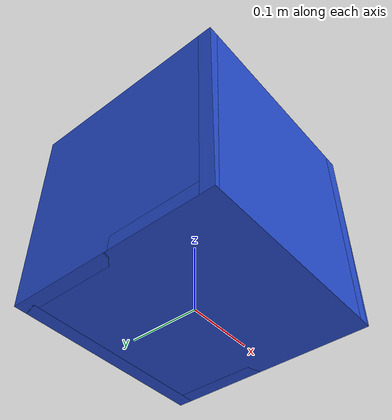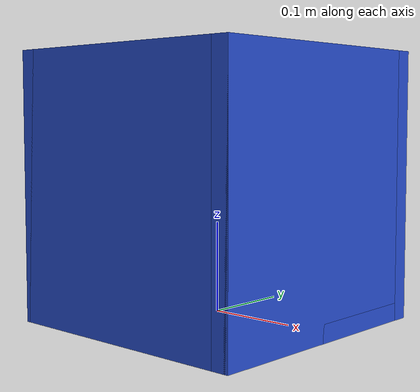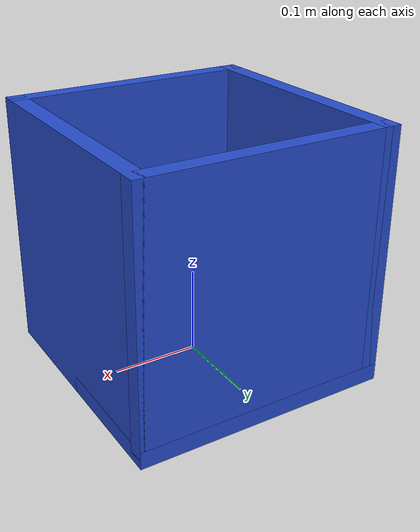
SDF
<?xml version='1.0'?>
<sdf version='1.6'>
  <model name='bin2_blue'>
    <link name='link_0'>
      <pose frame=''>-0 -0.140001 0.14 0 -0 0</pose>
      <inertial>
        <mass>0.6714</mass>
        <inertia>
          <ixx>0.00505788</ixx>
          <ixy>0</ixy>
          <ixz>0</ixz>
          <iyy>0.010071</iyy>
          <iyz>0</iyz>
          <izz>0.00505788</izz>
        </inertia>
        <pose frame=''>0 0 0 0 -0 0</pose>
      </inertial>
      <gravity>1</gravity>
      <self_collide>0</self_collide>
      <kinematic>0</kinematic>
      <enable_wind>0</enable_wind>
      <visual name='visual'>
        <pose frame=''>0 0 0 0 -0 0</pose>
        <geometry>
          <box>
            <size>0.3 0.02 0.3</size>
          </box>
        </geometry>
        <material>
          <lighting>1</lighting>
          <script>
            <uri>file://media/materials/scripts/gazebo.material</uri>
            <name>Gazebo/Blue</name>
          </script>
          <ambient>0 0 1 1</ambient>
          <diffuse>0 0 1 1</diffuse>
          <specular>0.01 0.01 1 1</specular>
          <emissive>0 0 0 1</emissive>
          <shader type='vertex'>
            <normal_map>__default__</normal_map>
          </shader>
        </material>
        <cast_shadows>1</cast_shadows>
        <transparency>0</transparency>
      </visual>
      <collision name='collision'>
        <laser_retro>0</laser_retro>
        <max_contacts>10</max_contacts>
        <pose frame=''>0 0 0 0 -0 0</pose>
        <geometry>
          <box>
            <size>0.3 0.02 0.3</size>
          </box>
        </geometry>
        <surface>
          <friction>
            <ode>
              <mu>1</mu>
              <mu2>1</mu2>
              <fdir1>0 0 0</fdir1>
              <slip1>0</slip1>
              <slip2>0</slip2>
            </ode>
            <torsional>
              <coefficient>1</coefficient>
              <patch_radius>0</patch_radius>
              <surface_radius>0</surface_radius>
              <use_patch_radius>1</use_patch_radius>
              <ode>
                <slip>0</slip>
              </ode>
            </torsional>
          </friction>
          <bounce>
            <restitution_coefficient>0</restitution_coefficient>
            <threshold>1e+06</threshold>
          </bounce>
          <contact>
            <collide_without_contact>0</collide_without_contact>
            <collide_without_contact_bitmask>1</collide_without_contact_bitmask>
            <collide_bitmask>1</collide_bitmask>
            <ode>
              <soft_cfm>0</soft_cfm>
              <soft_erp>0.2</soft_erp>
              <kp>1e+13</kp>
              <kd>1</kd>
              <max_vel>0.01</max_vel>
              <min_depth>0</min_depth>
            </ode>
            <bullet>
              <split_impulse>1</split_impulse>
              <split_impulse_penetration_threshold>-0.01</split_impulse_penetration_threshold>
              <soft_cfm>0</soft_cfm>
              <soft_erp>0.2</soft_erp>
              <kp>1e+13</kp>
              <kd>1</kd>
            </bullet>
          </contact>
        </surface>
      </collision>
    </link>
    <link name='link_0_clone'>
      <pose frame=''>0 0.139999 0.14 0 -0 0</pose>
      <inertial>
        <mass>0.6714</mass>
        <inertia>
          <ixx>0.00505788</ixx>
          <ixy>0</ixy>
          <ixz>0</ixz>
          <iyy>0.010071</iyy>
          <iyz>0</iyz>
          <izz>0.00505788</izz>
        </inertia>
        <pose frame=''>0 0 0 0 -0 0</pose>
      </inertial>
      <self_collide>0</self_collide>
      <kinematic>0</kinematic>
      <enable_wind>0</enable_wind>
      <gravity>1</gravity>
      <visual name='visual'>
        <pose frame=''>0 0 0 0 -0 0</pose>
        <geometry>
          <box>
            <size>0.3 0.02 0.3</size>
          </box>
        </geometry>
        <material>
          <lighting>1</lighting>
          <script>
            <uri>file://media/materials/scripts/gazebo.material</uri>
            <name>Gazebo/Blue</name>
          </script>
          <ambient>0 0 1 1</ambient>
          <diffuse>0 0 1 1</diffuse>
          <specular>0 0.01 1 1</specular>
          <emissive>0 0 0 1</emissive>
          <shader type='vertex'>
            <normal_map>__default__</normal_map>
          </shader>
        </material>
        <cast_shadows>1</cast_shadows>
        <transparency>0</transparency>
      </visual>
      <collision name='collision'>
        <laser_retro>0</laser_retro>
        <max_contacts>10</max_contacts>
        <pose frame=''>0 0 0 0 -0 0</pose>
        <geometry>
          <box>
            <size>0.3 0.02 0.3</size>
          </box>
        </geometry>
        <surface>
          <friction>
            <ode>
              <mu>1</mu>
              <mu2>1</mu2>
              <fdir1>0 0 0</fdir1>
              <slip1>0</slip1>
              <slip2>0</slip2>
            </ode>
            <torsional>
              <coefficient>1</coefficient>
              <patch_radius>0</patch_radius>
              <surface_radius>0</surface_radius>
              <use_patch_radius>1</use_patch_radius>
              <ode>
                <slip>0</slip>
              </ode>
            </torsional>
          </friction>
          <bounce>
            <restitution_coefficient>0</restitution_coefficient>
            <threshold>1e+06</threshold>
          </bounce>
          <contact>
            <collide_without_contact>0</collide_without_contact>
            <collide_without_contact_bitmask>1</collide_without_contact_bitmask>
            <collide_bitmask>1</collide_bitmask>
            <ode>
              <soft_cfm>0</soft_cfm>
              <soft_erp>0.2</soft_erp>
              <kp>1e+13</kp>
              <kd>1</kd>
              <max_vel>0.01</max_vel>
              <min_depth>0</min_depth>
            </ode>
            <bullet>
              <split_impulse>1</split_impulse>
              <split_impulse_penetration_threshold>-0.01</split_impulse_penetration_threshold>
              <soft_cfm>0</soft_cfm>
              <soft_erp>0.2</soft_erp>
              <kp>1e+13</kp>
              <kd>1</kd>
            </bullet>
          </contact>
        </surface>
      </collision>
    </link>
    <link name='link_0_clone_0'>
      <pose frame=''>-0.14 -1e-06 0.14 0 -0 1.5708</pose>
      <inertial>
        <mass>0.6714</mass>
        <inertia>
          <ixx>0.00505788</ixx>
          <ixy>0</ixy>
          <ixz>0</ixz>
          <iyy>0.010071</iyy>
          <iyz>0</iyz>
          <izz>0.00505788</izz>
        </inertia>
        <pose frame=''>0 0 0 0 -0 0</pose>
      </inertial>
      <self_collide>0</self_collide>
      <kinematic>0</kinematic>
      <gravity>1</gravity>
      <enable_wind>0</enable_wind>
      <visual name='visual'>
        <pose frame=''>0 0 0 0 -0 0</pose>
        <geometry>
          <box>
            <size>0.3 0.02 0.3</size>
          </box>
        </geometry>
        <material>
          <lighting>1</lighting>
          <script>
            <uri>file://media/materials/scripts/gazebo.material</uri>
            <name>Gazebo/Blue</name>
          </script>
          <ambient>0 0 1 1</ambient>
          <diffuse>0 0 1 1</diffuse>
          <specular>0 0.01 1 1</specular>
          <emissive>0 0 0 1</emissive>
          <shader type='vertex'>
            <normal_map>__default__</normal_map>
          </shader>
        </material>
        <cast_shadows>1</cast_shadows>
        <transparency>0</transparency>
      </visual>
      <collision name='collision'>
        <laser_retro>0</laser_retro>
        <max_contacts>10</max_contacts>
        <pose frame=''>0 0 0 0 -0 0</pose>
        <geometry>
          <box>
            <size>0.3 0.02 0.3</size>
          </box>
        </geometry>
        <surface>
          <friction>
            <ode>
              <mu>1</mu>
              <mu2>1</mu2>
              <fdir1>0 0 0</fdir1>
              <slip1>0</slip1>
              <slip2>0</slip2>
            </ode>
            <torsional>
              <coefficient>1</coefficient>
              <patch_radius>0</patch_radius>
              <surface_radius>0</surface_radius>
              <use_patch_radius>1</use_patch_radius>
              <ode>
                <slip>0</slip>
              </ode>
            </torsional>
          </friction>
          <bounce>
            <restitution_coefficient>0</restitution_coefficient>
            <threshold>1e+06</threshold>
          </bounce>
          <contact>
            <collide_without_contact>0</collide_without_contact>
            <collide_without_contact_bitmask>1</collide_without_contact_bitmask>
            <collide_bitmask>1</collide_bitmask>
            <ode>
              <soft_cfm>0</soft_cfm>
              <soft_erp>0.2</soft_erp>
              <kp>1e+13</kp>
              <kd>1</kd>
              <max_vel>0.01</max_vel>
              <min_depth>0</min_depth>
            </ode>
            <bullet>
              <split_impulse>1</split_impulse>
              <split_impulse_penetration_threshold>-0.01</split_impulse_penetration_threshold>
              <soft_cfm>0</soft_cfm>
              <soft_erp>0.2</soft_erp>
              <kp>1e+13</kp>
              <kd>1</kd>
            </bullet>
          </contact>
        </surface>
      </collision>
    </link>
    <link name='link_0_clone_0_clone'>
      <pose frame=''>0.14 -1e-06 0.14 0 -0 1.5708</pose>
      <inertial>
        <mass>0.6714</mass>
        <inertia>
          <ixx>0.00505788</ixx>
          <ixy>0</ixy>
          <ixz>0</ixz>
          <iyy>0.010071</iyy>
          <iyz>0</iyz>
          <izz>0.00505788</izz>
        </inertia>
        <pose frame=''>0 0 0 0 -0 0</pose>
      </inertial>
      <self_collide>0</self_collide>
      <kinematic>0</kinematic>
      <gravity>1</gravity>
      <enable_wind>0</enable_wind>
      <visual name='visual'>
        <pose frame=''>0 0 0 0 -0 0</pose>
        <geometry>
          <box>
            <size>0.3 0.02 0.3</size>
          </box>
        </geometry>
        <material>
          <lighting>1</lighting>
          <script>
            <uri>file://media/materials/scripts/gazebo.material</uri>
            <name>Gazebo/Blue</name>
          </script>
          <ambient>0 0 1 1</ambient>
          <diffuse>0 0 1 1</diffuse>
          <specular>0 0.01 1 1</specular>
          <emissive>0 0 0 1</emissive>
          <shader type='vertex'>
            <normal_map>__default__</normal_map>
          </shader>
        </material>
        <cast_shadows>1</cast_shadows>
        <transparency>0</transparency>
      </visual>
      <collision name='collision'>
        <laser_retro>0</laser_retro>
        <max_contacts>10</max_contacts>
        <pose frame=''>0 0 0 0 -0 0</pose>
        <geometry>
          <box>
            <size>0.3 0.02 0.3</size>
          </box>
        </geometry>
        <surface>
          <friction>
            <ode>
              <mu>1</mu>
              <mu2>1</mu2>
              <fdir1>0 0 0</fdir1>
              <slip1>0</slip1>
              <slip2>0</slip2>
            </ode>
            <torsional>
              <coefficient>1</coefficient>
              <patch_radius>0</patch_radius>
              <surface_radius>0</surface_radius>
              <use_patch_radius>1</use_patch_radius>
              <ode>
                <slip>0</slip>
              </ode>
            </torsional>
          </friction>
          <bounce>
            <restitution_coefficient>0</restitution_coefficient>
            <threshold>1e+06</threshold>
          </bounce>
          <contact>
            <collide_without_contact>0</collide_without_contact>
            <collide_without_contact_bitmask>1</collide_without_contact_bitmask>
            <collide_bitmask>1</collide_bitmask>
            <ode>
              <soft_cfm>0</soft_cfm>
              <soft_erp>0.2</soft_erp>
              <kp>1e+13</kp>
              <kd>1</kd>
              <max_vel>0.01</max_vel>
              <min_depth>0</min_depth>
            </ode>
            <bullet>
              <split_impulse>1</split_impulse>
              <split_impulse_penetration_threshold>-0.01</split_impulse_penetration_threshold>
              <soft_cfm>0</soft_cfm>
              <soft_erp>0.2</soft_erp>
              <kp>1e+13</kp>
              <kd>1</kd>
            </bullet>
          </contact>
        </surface>
      </collision>
    </link>
    <link name='link_0_clone_1'>
      <pose frame=''>0 0 0 1.5708 -0 0</pose>
      <inertial>
        <mass>0.6714</mass>
        <inertia>
          <ixx>0.00505788</ixx>
          <ixy>0</ixy>
          <ixz>0</ixz>
          <iyy>0.010071</iyy>
          <iyz>0</iyz>
          <izz>0.00505788</izz>
        </inertia>
        <pose frame=''>0 0 0 0 -0 0</pose>
      </inertial>
      <self_collide>0</self_collide>
      <kinematic>0</kinematic>
      <gravity>1</gravity>
      <enable_wind>0</enable_wind>
      <visual name='visual'>
        <pose frame=''>0 0 0 0 -0 0</pose>
        <geometry>
          <box>
            <size>0.3 0.02 0.3</size>
          </box>
        </geometry>
        <material>
          <lighting>1</lighting>
          <script>
            <uri>file://media/materials/scripts/gazebo.material</uri>
            <name>Gazebo/Blue</name>
          </script>
          <ambient>0 0 1 1</ambient>
          <diffuse>0 0 1 1</diffuse>
          <specular>0 0.01 1 1</specular>
          <emissive>0 0 0 1</emissive>
          <shader type='vertex'>
            <normal_map>__default__</normal_map>
          </shader>
        </material>
        <cast_shadows>1</cast_shadows>
        <transparency>0</transparency>
      </visual>
      <collision name='collision'>
        <laser_retro>0</laser_retro>
        <max_contacts>10</max_contacts>
        <pose frame=''>0 0 0 0 -0 0</pose>
        <geometry>
          <box>
            <size>0.3 0.02 0.3</size>
          </box>
        </geometry>
        <surface>
          <friction>
            <ode>
              <mu>1</mu>
              <mu2>1</mu2>
              <fdir1>0 0 0</fdir1>
              <slip1>0</slip1>
              <slip2>0</slip2>
            </ode>
            <torsional>
              <coefficient>1</coefficient>
              <patch_radius>0</patch_radius>
              <surface_radius>0</surface_radius>
              <use_patch_radius>1</use_patch_radius>
              <ode>
                <slip>0</slip>
              </ode>
            </torsional>
          </friction>
          <bounce>
            <restitution_coefficient>0</restitution_coefficient>
            <threshold>1e+06</threshold>
          </bounce>
          <contact>
            <collide_without_contact>0</collide_without_contact>
            <collide_without_contact_bitmask>1</collide_without_contact_bitmask>
            <collide_bitmask>1</collide_bitmask>
            <ode>
              <soft_cfm>0</soft_cfm>
              <soft_erp>0.2</soft_erp>
              <kp>1e+13</kp>
              <kd>1</kd>
              <max_vel>0.01</max_vel>
              <min_depth>0</min_depth>
            </ode>
            <bullet>
              <split_impulse>1</split_impulse>
              <split_impulse_penetration_threshold>-0.01</split_impulse_penetration_threshold>
              <soft_cfm>0</soft_cfm>
              <soft_erp>0.2</soft_erp>
              <kp>1e+13</kp>
              <kd>1</kd>
            </bullet>
          </contact>
        </surface>
      </collision>
    </link>
    <joint name='link_0_clone_1_JOINT_3' type='fixed'>
      <parent>link_0_clone_1</parent>
      <child>link_0_clone</child>
      <pose frame=''>0 0 0 0 -0 0</pose>
      <physics>
        <ode>
          <limit>
            <cfm>0</cfm>
            <erp>0.2</erp>
          </limit>
          <suspension>
            <cfm>0</cfm>
            <erp>0.2</erp>
          </suspension>
        </ode>
      </physics>
    </joint>
    <joint name='link_0_clone_1_JOINT_4' type='fixed'>
      <parent>link_0_clone_1</parent>
      <child>link_0</child>
      <pose frame=''>0 0 0 0 -0 0</pose>
      <physics>
        <ode>
          <limit>
            <cfm>0</cfm>
            <erp>0.2</erp>
          </limit>
          <suspension>
            <cfm>0</cfm>
            <erp>0.2</erp>
          </suspension>
        </ode>
      </physics>
    </joint>
    <joint name='link_0_clone_1_JOINT_5' type='fixed'>
      <parent>link_0_clone_1</parent>
      <child>link_0_clone_0_clone</child>
      <pose frame=''>0 0 0 0 -0 0</pose>
      <physics>
        <ode>
          <limit>
            <cfm>0</cfm>
            <erp>0.2</erp>
          </limit>
          <suspension>
            <cfm>0</cfm>
            <erp>0.2</erp>
          </suspension>
        </ode>
      </physics>
    </joint>
    <joint name='link_0_clone_1_JOINT_6' type='fixed'>
      <parent>link_0_clone_1</parent>
      <child>link_0_clone_0</child>
      <pose frame=''>0 0 0 0 -0 0</pose>
      <physics>
        <ode>
          <limit>
            <cfm>0</cfm>
            <erp>0.2</erp>
          </limit>
          <suspension>
            <cfm>0</cfm>
            <erp>0.2</erp>
          </suspension>
        </ode>
      </physics>
    </joint>
    <static>0</static>
    <allow_auto_disable>1</allow_auto_disable>
  </model>
</sdf>
